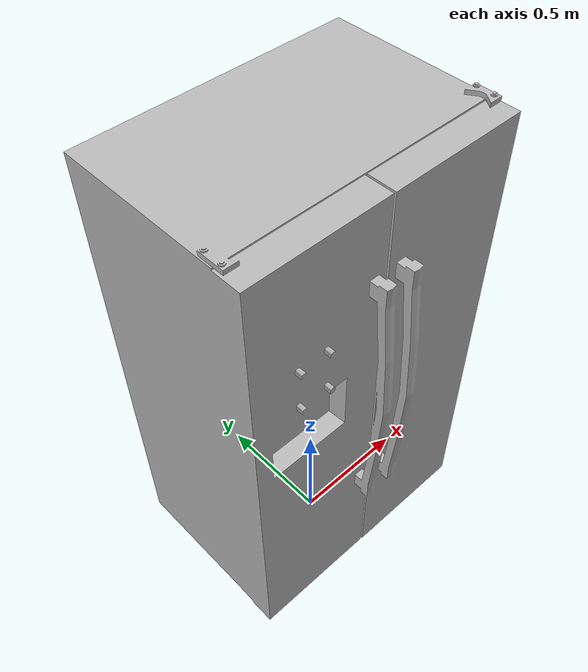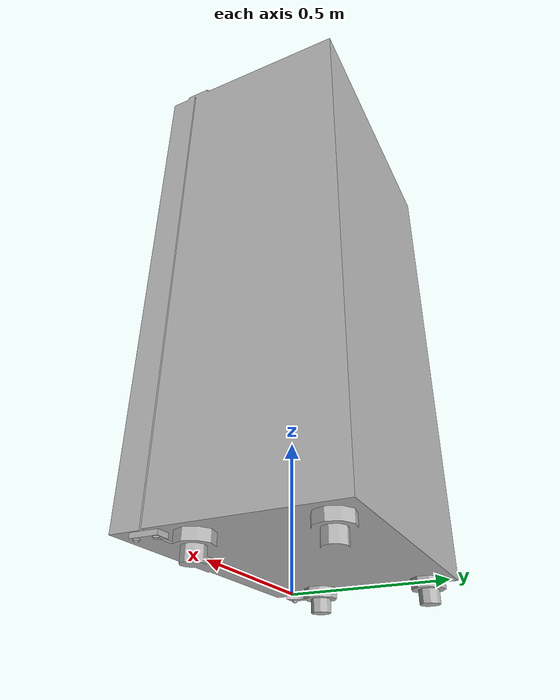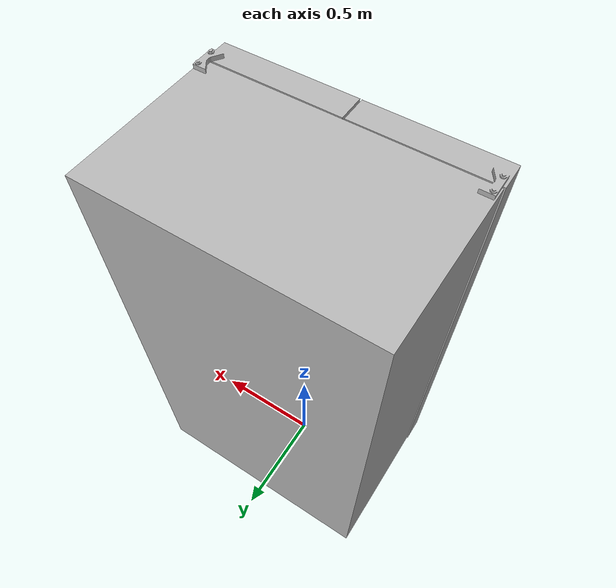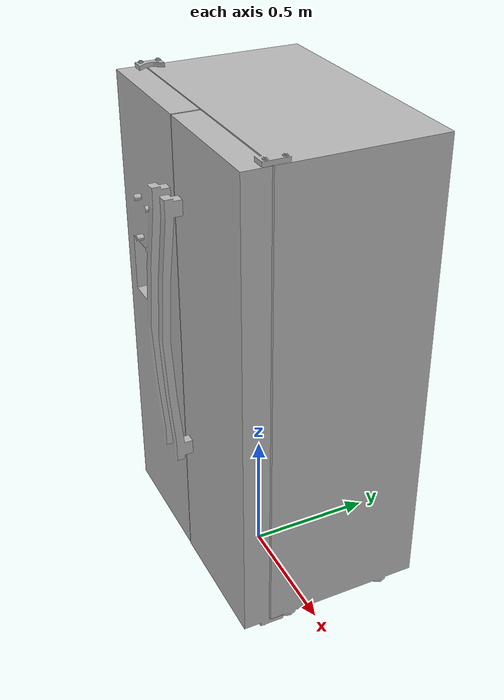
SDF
<?xml version="1.0" ?>
<sdf version="1.6">
  <model name="aws_robomaker_residential_Refrigerator_01">
    <link name="link">
      <inertial>
        <mass>1</mass>
      </inertial>
      <collision name="collision">
        <geometry>
          <mesh>
            <uri>model://aws_robomaker_residential_Refrigerator_01/meshes/aws_Refrigerator_01_collision.DAE</uri>
            <scale>1 1 1</scale>
          </mesh>
        </geometry>
      </collision>
      <visual name="visual">
        <geometry>
          <mesh>
            <uri>model://aws_robomaker_residential_Refrigerator_01/meshes/aws_Refrigerator_01_visual.DAE</uri>
          </mesh>
        </geometry>
        <meta>
          <layer> 1 </layer>
        </meta>
      </visual>
    </link>
    <static>1</static>
  </model>
</sdf>
